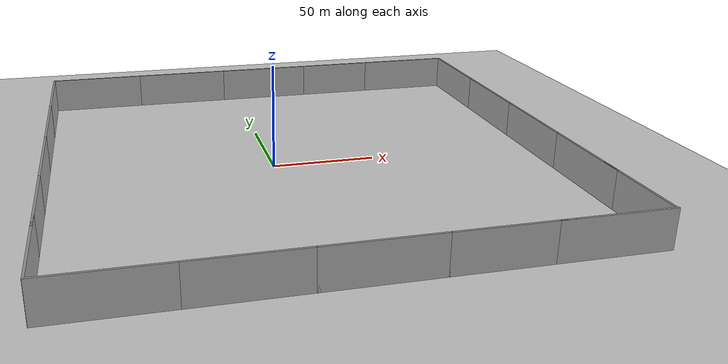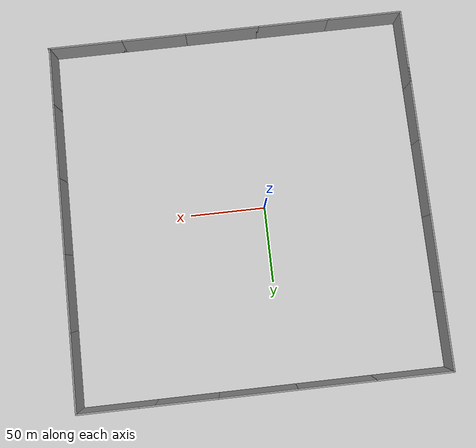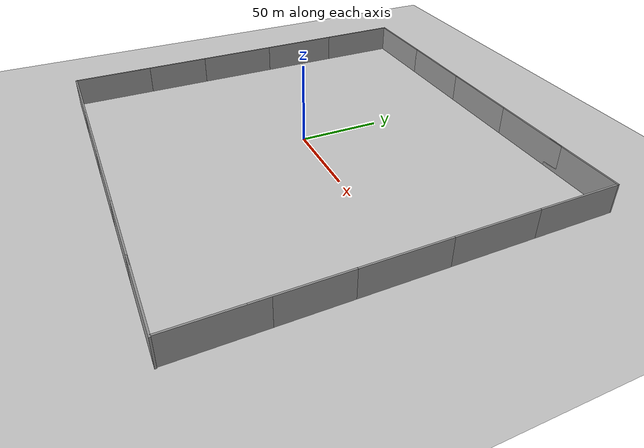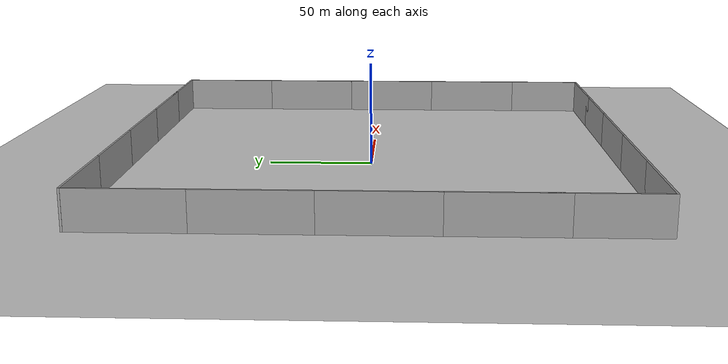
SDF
<sdf version="1.7">
 <world name="default">
  <light name="sun" type="directional">
   <pose>0 0 10 0 -0 0</pose>
   <diffuse>0.8 0.8 0.8 1</diffuse>
   <specular>0.2 0.2 0.2 1</specular>
   <attenuation>
    <range>1000</range>
    <constant>0.9</constant>
    <linear>0.01</linear>
    <quadratic>0.001</quadratic>
   </attenuation>
   <direction>-0.5 0.1 -0.9</direction>
   <spot><inner_angle>0</inner_angle><outer_angle>0</outer_angle><falloff>0</falloff></spot>
  </light>
  <model name="ground_plane">
   <static>1</static>
   <link name="link">
    <collision name="collision">
     <geometry><plane><normal>0 0 1</normal><size>100 100</size></plane></geometry>
     <surface><friction><ode><mu>100</mu><mu2>50</mu2></ode></friction></surface>
    </collision>
    <visual name="visual">
     <cast_shadows>0</cast_shadows>
     <geometry><plane><normal>0 0 1</normal><size>100 100</size></plane></geometry>
     <material>
      <script><uri>file://media/materials/scripts/gazebo.material</uri><name>Gazebo/Grey</name></script>
     </material>
    </visual>
   </link>
  </model>
  <gravity>0 0 -9.8</gravity>
  <magnetic_field>6e-06 2.3e-05 -4.2e-05</magnetic_field>
  <atmosphere type="adiabatic"/>
  <physics type="ode" name="split_unthrottled0" default="true">
   <max_step_size>0.002</max_step_size>
   <real_time_factor>1</real_time_factor>
   <real_time_update_rate>500</real_time_update_rate>
   <ode>
    <solver><thread_position_correction>1</thread_position_correction><island_threads>4</island_threads></solver>
   </ode>
  </physics>
  <physics type="ode" name="split_unthrottled1">
   <real_time_update_rate>0.0</real_time_update_rate>
   <ode>
    <solver><thread_position_correction>1</thread_position_correction><island_threads>4</island_threads></solver>
   </ode>
  </physics>
  <physics type="ode" name="split_unthrottled2">
   <real_time_update_rate>0.0</real_time_update_rate>
   <ode>
    <solver><thread_position_correction>1</thread_position_correction><island_threads>1</island_threads></solver>
   </ode>
  </physics>
  <scene><ambient>0.4 0.4 0.4 1</ambient><background>1 1 1 1</background><shadows>1</shadows></scene>
  <spherical_coordinates>
   <surface_model>EARTH_WGS84</surface_model>
   <latitude_deg>0</latitude_deg>
   <longitude_deg>0</longitude_deg>
   <elevation>0</elevation>
   <heading_deg>0</heading_deg>
  </spherical_coordinates>
  <model name="BigWall">
   <link name="link_0">
    <inertial>
     <mass>1</mass>
     <inertia>
      <ixx>0.166667</ixx>
      <ixy>0</ixy>
      <ixz>0</ixz>
      <iyy>0.166667</iyy>
      <iyz>0</iyz>
      <izz>0.166667</izz>
     </inertia>
    </inertial>
    <visual name="visual">
     <geometry><box><size>50 1 20</size></box></geometry>
     <material>
      <lighting>1</lighting>
      <script><uri>file://media/materials/scripts/gazebo.material</uri><name>Gazebo/Grey</name></script>
      <shader type="pixel"><normal_map>__default__</normal_map></shader>
      <ambient>0.3 0.3 0.3 1</ambient>
      <diffuse>0.7 0.7 0.7 1</diffuse>
      <specular>0.01 0.01 0.01 1</specular>
      <emissive>0 0 0 1</emissive>
     </material>
    </visual>
    <collision name="collision">
     <geometry><box><size>50 1 20</size></box></geometry>
     <surface>
      <friction>
       <ode><mu>1</mu><mu2>1</mu2><fdir1>0 0 0</fdir1><slip1>0</slip1><slip2>0</slip2></ode>
       <torsional>
        <coefficient>1</coefficient>
        <patch_radius>0</patch_radius>
        <surface_radius>0</surface_radius>
        <use_patch_radius>1</use_patch_radius>
        <ode><slip>0</slip></ode>
       </torsional>
      </friction>
      <bounce><restitution_coefficient>0</restitution_coefficient><threshold>1e+06</threshold></bounce>
      <contact>
       <collide_without_contact>0</collide_without_contact>
       <collide_without_contact_bitmask>1</collide_without_contact_bitmask>
       <collide_bitmask>1</collide_bitmask>
       <ode>
        <soft_cfm>0</soft_cfm>
        <soft_erp>0.2</soft_erp>
        <kp>1e+13</kp>
        <kd>1</kd>
        <max_vel>0.01</max_vel>
        <min_depth>0</min_depth>
       </ode>
       <bullet>
        <split_impulse>1</split_impulse>
        <split_impulse_penetration_threshold>-0.01</split_impulse_penetration_threshold>
        <soft_cfm>0</soft_cfm>
        <soft_erp>0.2</soft_erp>
        <kp>1e+13</kp>
        <kd>1</kd>
       </bullet>
      </contact>
     </surface>
    </collision>
   </link>
   <static>1</static>
   <pose>-81.663 -121.428 7.684 0 -0 0</pose>
  </model>
  <model name="BigWall2">
   <link name="link_0">
    <inertial>
     <mass>1</mass>
     <inertia>
      <ixx>0.166667</ixx>
      <ixy>0</ixy>
      <ixz>0</ixz>
      <iyy>0.166667</iyy>
      <iyz>0</iyz>
      <izz>0.166667</izz>
     </inertia>
    </inertial>
    <visual name="visual">
     <geometry><box><size>50 1 20</size></box></geometry>
     <material>
      <lighting>1</lighting>
      <script><uri>file://media/materials/scripts/gazebo.material</uri><name>Gazebo/Grey</name></script>
      <shader type="pixel"><normal_map>__default__</normal_map></shader>
      <ambient>0.3 0.3 0.3 1</ambient>
      <diffuse>0.7 0.7 0.7 1</diffuse>
      <specular>0.01 0.01 0.01 1</specular>
      <emissive>0 0 0 1</emissive>
     </material>
    </visual>
    <collision name="collision">
     <geometry><box><size>50 1 20</size></box></geometry>
     <surface>
      <friction>
       <ode><mu>1</mu><mu2>1</mu2><fdir1>0 0 0</fdir1><slip1>0</slip1><slip2>0</slip2></ode>
       <torsional>
        <coefficient>1</coefficient>
        <patch_radius>0</patch_radius>
        <surface_radius>0</surface_radius>
        <use_patch_radius>1</use_patch_radius>
        <ode><slip>0</slip></ode>
       </torsional>
      </friction>
      <bounce><restitution_coefficient>0</restitution_coefficient><threshold>1e+06</threshold></bounce>
      <contact>
       <collide_without_contact>0</collide_without_contact>
       <collide_without_contact_bitmask>1</collide_without_contact_bitmask>
       <collide_bitmask>1</collide_bitmask>
       <ode>
        <soft_cfm>0</soft_cfm>
        <soft_erp>0.2</soft_erp>
        <kp>1e+13</kp>
        <kd>1</kd>
        <max_vel>0.01</max_vel>
        <min_depth>0</min_depth>
       </ode>
       <bullet>
        <split_impulse>1</split_impulse>
        <split_impulse_penetration_threshold>-0.01</split_impulse_penetration_threshold>
        <soft_cfm>0</soft_cfm>
        <soft_erp>0.2</soft_erp>
        <kp>1e+13</kp>
        <kd>1</kd>
       </bullet>
      </contact>
     </surface>
    </collision>
   </link>
   <static>1</static>
   <pose>-32.963 -121.428 7.684 0 -0 0</pose>
  </model>
  <model name="BigWall3">
   <link name="link_0">
    <inertial>
     <mass>1</mass>
     <inertia>
      <ixx>0.166667</ixx>
      <ixy>0</ixy>
      <ixz>0</ixz>
      <iyy>0.166667</iyy>
      <iyz>0</iyz>
      <izz>0.166667</izz>
     </inertia>
    </inertial>
    <visual name="visual">
     <geometry><box><size>50 1 20</size></box></geometry>
     <material>
      <lighting>1</lighting>
      <script><uri>file://media/materials/scripts/gazebo.material</uri><name>Gazebo/Grey</name></script>
      <shader type="pixel"><normal_map>__default__</normal_map></shader>
      <ambient>0.3 0.3 0.3 1</ambient>
      <diffuse>0.7 0.7 0.7 1</diffuse>
      <specular>0.01 0.01 0.01 1</specular>
      <emissive>0 0 0 1</emissive>
     </material>
    </visual>
    <collision name="collision">
     <geometry><box><size>50 1 20</size></box></geometry>
     <surface>
      <friction>
       <ode><mu>1</mu><mu2>1</mu2><fdir1>0 0 0</fdir1><slip1>0</slip1><slip2>0</slip2></ode>
       <torsional>
        <coefficient>1</coefficient>
        <patch_radius>0</patch_radius>
        <surface_radius>0</surface_radius>
        <use_patch_radius>1</use_patch_radius>
        <ode><slip>0</slip></ode>
       </torsional>
      </friction>
      <bounce><restitution_coefficient>0</restitution_coefficient><threshold>1e+06</threshold></bounce>
      <contact>
       <collide_without_contact>0</collide_without_contact>
       <collide_without_contact_bitmask>1</collide_without_contact_bitmask>
       <collide_bitmask>1</collide_bitmask>
       <ode>
        <soft_cfm>0</soft_cfm>
        <soft_erp>0.2</soft_erp>
        <kp>1e+13</kp>
        <kd>1</kd>
        <max_vel>0.01</max_vel>
        <min_depth>0</min_depth>
       </ode>
       <bullet>
        <split_impulse>1</split_impulse>
        <split_impulse_penetration_threshold>-0.01</split_impulse_penetration_threshold>
        <soft_cfm>0</soft_cfm>
        <soft_erp>0.2</soft_erp>
        <kp>1e+13</kp>
        <kd>1</kd>
       </bullet>
      </contact>
     </surface>
    </collision>
   </link>
   <static>1</static>
   <pose>-106.262665 42.9 7.684 0 -0 -1.5707</pose>
  </model>
  <model name="BigWall4">
   <link name="link_0">
    <inertial>
     <mass>1</mass>
     <inertia>
      <ixx>0.166667</ixx>
      <ixy>0</ixy>
      <ixz>0</ixz>
      <iyy>0.166667</iyy>
      <iyz>0</iyz>
      <izz>0.166667</izz>
     </inertia>
    </inertial>
    <visual name="visual">
     <geometry><box><size>50 1 20</size></box></geometry>
     <material>
      <lighting>1</lighting>
      <script><uri>file://media/materials/scripts/gazebo.material</uri><name>Gazebo/Grey</name></script>
      <shader type="pixel"><normal_map>__default__</normal_map></shader>
      <ambient>0.3 0.3 0.3 1</ambient>
      <diffuse>0.7 0.7 0.7 1</diffuse>
      <specular>0.01 0.01 0.01 1</specular>
      <emissive>0 0 0 1</emissive>
     </material>
    </visual>
    <collision name="collision">
     <geometry><box><size>50 1 20</size></box></geometry>
     <surface>
      <friction>
       <ode><mu>1</mu><mu2>1</mu2><fdir1>0 0 0</fdir1><slip1>0</slip1><slip2>0</slip2></ode>
       <torsional>
        <coefficient>1</coefficient>
        <patch_radius>0</patch_radius>
        <surface_radius>0</surface_radius>
        <use_patch_radius>1</use_patch_radius>
        <ode><slip>0</slip></ode>
       </torsional>
      </friction>
      <bounce><restitution_coefficient>0</restitution_coefficient><threshold>1e+06</threshold></bounce>
      <contact>
       <collide_without_contact>0</collide_without_contact>
       <collide_without_contact_bitmask>1</collide_without_contact_bitmask>
       <collide_bitmask>1</collide_bitmask>
       <ode>
        <soft_cfm>0</soft_cfm>
        <soft_erp>0.2</soft_erp>
        <kp>1e+13</kp>
        <kd>1</kd>
        <max_vel>0.01</max_vel>
        <min_depth>0</min_depth>
       </ode>
       <bullet>
        <split_impulse>1</split_impulse>
        <split_impulse_penetration_threshold>-0.01</split_impulse_penetration_threshold>
        <soft_cfm>0</soft_cfm>
        <soft_erp>0.2</soft_erp>
        <kp>1e+13</kp>
        <kd>1</kd>
       </bullet>
      </contact>
     </surface>
    </collision>
   </link>
   <static>1</static>
   <pose>-106.262665 92.9 7.684 0 -0 -1.5707</pose>
  </model>
  <model name="BigWall5_0">
   <link name="link_0">
    <inertial>
     <mass>1</mass>
     <inertia>
      <ixx>0.166667</ixx>
      <ixy>0</ixy>
      <ixz>0</ixz>
      <iyy>0.166667</iyy>
      <iyz>0</iyz>
      <izz>0.166667</izz>
     </inertia>
    </inertial>
    <visual name="visual">
     <geometry><box><size>50 1 20</size></box></geometry>
     <material>
      <lighting>1</lighting>
      <script><uri>file://media/materials/scripts/gazebo.material</uri><name>Gazebo/Grey</name></script>
      <shader type="pixel"><normal_map>__default__</normal_map></shader>
      <ambient>0.3 0.3 0.3 1</ambient>
      <diffuse>0.7 0.7 0.7 1</diffuse>
      <specular>0.01 0.01 0.01 1</specular>
      <emissive>0 0 0 1</emissive>
     </material>
    </visual>
    <collision name="collision">
     <geometry><box><size>50 1 20</size></box></geometry>
     <surface>
      <friction>
       <ode><mu>1</mu><mu2>1</mu2><fdir1>0 0 0</fdir1><slip1>0</slip1><slip2>0</slip2></ode>
       <torsional>
        <coefficient>1</coefficient>
        <patch_radius>0</patch_radius>
        <surface_radius>0</surface_radius>
        <use_patch_radius>1</use_patch_radius>
        <ode><slip>0</slip></ode>
       </torsional>
      </friction>
      <bounce><restitution_coefficient>0</restitution_coefficient><threshold>1e+06</threshold></bounce>
      <contact>
       <collide_without_contact>0</collide_without_contact>
       <collide_without_contact_bitmask>1</collide_without_contact_bitmask>
       <collide_bitmask>1</collide_bitmask>
       <ode>
        <soft_cfm>0</soft_cfm>
        <soft_erp>0.2</soft_erp>
        <kp>1e+13</kp>
        <kd>1</kd>
        <max_vel>0.01</max_vel>
        <min_depth>0</min_depth>
       </ode>
       <bullet>
        <split_impulse>1</split_impulse>
        <split_impulse_penetration_threshold>-0.01</split_impulse_penetration_threshold>
        <soft_cfm>0</soft_cfm>
        <soft_erp>0.2</soft_erp>
        <kp>1e+13</kp>
        <kd>1</kd>
       </bullet>
      </contact>
     </surface>
    </collision>
   </link>
   <static>1</static>
   <pose>-81.8 117.9 7.684 0 -0 0</pose>
  </model>
  <model name="BigWall5">
   <link name="link_0">
    <inertial>
     <mass>1</mass>
     <inertia>
      <ixx>0.166667</ixx>
      <ixy>0</ixy>
      <ixz>0</ixz>
      <iyy>0.166667</iyy>
      <iyz>0</iyz>
      <izz>0.166667</izz>
     </inertia>
    </inertial>
    <visual name="visual">
     <geometry><box><size>50 1 20</size></box></geometry>
     <material>
      <lighting>1</lighting>
      <script><uri>file://media/materials/scripts/gazebo.material</uri><name>Gazebo/Grey</name></script>
      <shader type="pixel"><normal_map>__default__</normal_map></shader>
      <ambient>0.3 0.3 0.3 1</ambient>
      <diffuse>0.7 0.7 0.7 1</diffuse>
      <specular>0.01 0.01 0.01 1</specular>
      <emissive>0 0 0 1</emissive>
     </material>
    </visual>
    <collision name="collision">
     <geometry><box><size>50 1 20</size></box></geometry>
     <surface>
      <friction>
       <ode><mu>1</mu><mu2>1</mu2><fdir1>0 0 0</fdir1><slip1>0</slip1><slip2>0</slip2></ode>
       <torsional>
        <coefficient>1</coefficient>
        <patch_radius>0</patch_radius>
        <surface_radius>0</surface_radius>
        <use_patch_radius>1</use_patch_radius>
        <ode><slip>0</slip></ode>
       </torsional>
      </friction>
      <bounce><restitution_coefficient>0</restitution_coefficient><threshold>1e+06</threshold></bounce>
      <contact>
       <collide_without_contact>0</collide_without_contact>
       <collide_without_contact_bitmask>1</collide_without_contact_bitmask>
       <collide_bitmask>1</collide_bitmask>
       <ode>
        <soft_cfm>0</soft_cfm>
        <soft_erp>0.2</soft_erp>
        <kp>1e+13</kp>
        <kd>1</kd>
        <max_vel>0.01</max_vel>
        <min_depth>0</min_depth>
       </ode>
       <bullet>
        <split_impulse>1</split_impulse>
        <split_impulse_penetration_threshold>-0.01</split_impulse_penetration_threshold>
        <soft_cfm>0</soft_cfm>
        <soft_erp>0.2</soft_erp>
        <kp>1e+13</kp>
        <kd>1</kd>
       </bullet>
      </contact>
     </surface>
    </collision>
   </link>
   <static>1</static>
   <pose>-32.262665 117.9 7.684 0 -0 0</pose>
  </model>
  <model name="BigWall5_1">
   <link name="link_0">
    <inertial>
     <mass>1</mass>
     <inertia>
      <ixx>0.166667</ixx>
      <ixy>0</ixy>
      <ixz>0</ixz>
      <iyy>0.166667</iyy>
      <iyz>0</iyz>
      <izz>0.166667</izz>
     </inertia>
    </inertial>
    <visual name="visual">
     <geometry><box><size>50 1 20</size></box></geometry>
     <material>
      <lighting>1</lighting>
      <script><uri>file://media/materials/scripts/gazebo.material</uri><name>Gazebo/Grey</name></script>
      <shader type="pixel"><normal_map>__default__</normal_map></shader>
      <ambient>0.3 0.3 0.3 1</ambient>
      <diffuse>0.7 0.7 0.7 1</diffuse>
      <specular>0.01 0.01 0.01 1</specular>
      <emissive>0 0 0 1</emissive>
     </material>
    </visual>
    <collision name="collision">
     <geometry><box><size>50 1 20</size></box></geometry>
     <surface>
      <friction>
       <ode><mu>1</mu><mu2>1</mu2><fdir1>0 0 0</fdir1><slip1>0</slip1><slip2>0</slip2></ode>
       <torsional>
        <coefficient>1</coefficient>
        <patch_radius>0</patch_radius>
        <surface_radius>0</surface_radius>
        <use_patch_radius>1</use_patch_radius>
        <ode><slip>0</slip></ode>
       </torsional>
      </friction>
      <bounce><restitution_coefficient>0</restitution_coefficient><threshold>1e+06</threshold></bounce>
      <contact>
       <collide_without_contact>0</collide_without_contact>
       <collide_without_contact_bitmask>1</collide_without_contact_bitmask>
       <collide_bitmask>1</collide_bitmask>
       <ode>
        <soft_cfm>0</soft_cfm>
        <soft_erp>0.2</soft_erp>
        <kp>1e+13</kp>
        <kd>1</kd>
        <max_vel>0.01</max_vel>
        <min_depth>0</min_depth>
       </ode>
       <bullet>
        <split_impulse>1</split_impulse>
        <split_impulse_penetration_threshold>-0.01</split_impulse_penetration_threshold>
        <soft_cfm>0</soft_cfm>
        <soft_erp>0.2</soft_erp>
        <kp>1e+13</kp>
        <kd>1</kd>
       </bullet>
      </contact>
     </surface>
    </collision>
   </link>
   <static>1</static>
   <pose>17.737335 117.9 7.684 0 -0 0</pose>
  </model>
  <model name="BigWall6">
   <link name="link_0">
    <inertial>
     <mass>1</mass>
     <inertia>
      <ixx>0.166667</ixx>
      <ixy>0</ixy>
      <ixz>0</ixz>
      <iyy>0.166667</iyy>
      <iyz>0</iyz>
      <izz>0.166667</izz>
     </inertia>
    </inertial>
    <visual name="visual">
     <geometry><box><size>50 1 20</size></box></geometry>
     <material>
      <lighting>1</lighting>
      <script><uri>file://media/materials/scripts/gazebo.material</uri><name>Gazebo/Grey</name></script>
      <shader type="pixel"><normal_map>__default__</normal_map></shader>
      <ambient>0.3 0.3 0.3 1</ambient>
      <diffuse>0.7 0.7 0.7 1</diffuse>
      <specular>0.01 0.01 0.01 1</specular>
      <emissive>0 0 0 1</emissive>
     </material>
    </visual>
    <collision name="collision">
     <geometry><box><size>50 1 20</size></box></geometry>
     <surface>
      <friction>
       <ode><mu>1</mu><mu2>1</mu2><fdir1>0 0 0</fdir1><slip1>0</slip1><slip2>0</slip2></ode>
       <torsional>
        <coefficient>1</coefficient>
        <patch_radius>0</patch_radius>
        <surface_radius>0</surface_radius>
        <use_patch_radius>1</use_patch_radius>
        <ode><slip>0</slip></ode>
       </torsional>
      </friction>
      <bounce><restitution_coefficient>0</restitution_coefficient><threshold>1e+06</threshold></bounce>
      <contact>
       <collide_without_contact>0</collide_without_contact>
       <collide_without_contact_bitmask>1</collide_without_contact_bitmask>
       <collide_bitmask>1</collide_bitmask>
       <ode>
        <soft_cfm>0</soft_cfm>
        <soft_erp>0.2</soft_erp>
        <kp>1e+13</kp>
        <kd>1</kd>
        <max_vel>0.01</max_vel>
        <min_depth>0</min_depth>
       </ode>
       <bullet>
        <split_impulse>1</split_impulse>
        <split_impulse_penetration_threshold>-0.01</split_impulse_penetration_threshold>
        <soft_cfm>0</soft_cfm>
        <soft_erp>0.2</soft_erp>
        <kp>1e+13</kp>
        <kd>1</kd>
       </bullet>
      </contact>
     </surface>
    </collision>
   </link>
   <static>1</static>
   <pose>67.737335 117.9 7.684 0 -0 0</pose>
  </model>
  <model name="BigWall6_1">
   <link name="link_0">
    <inertial>
     <mass>1</mass>
     <inertia>
      <ixx>0.166667</ixx>
      <ixy>0</ixy>
      <ixz>0</ixz>
      <iyy>0.166667</iyy>
      <iyz>0</iyz>
      <izz>0.166667</izz>
     </inertia>
    </inertial>
    <visual name="visual">
     <geometry><box><size>50 1 20</size></box></geometry>
     <material>
      <lighting>1</lighting>
      <script><uri>file://media/materials/scripts/gazebo.material</uri><name>Gazebo/Grey</name></script>
      <shader type="pixel"><normal_map>__default__</normal_map></shader>
      <ambient>0.3 0.3 0.3 1</ambient>
      <diffuse>0.7 0.7 0.7 1</diffuse>
      <specular>0.01 0.01 0.01 1</specular>
      <emissive>0 0 0 1</emissive>
     </material>
    </visual>
    <collision name="collision">
     <geometry><box><size>50 1 20</size></box></geometry>
     <surface>
      <friction>
       <ode><mu>1</mu><mu2>1</mu2><fdir1>0 0 0</fdir1><slip1>0</slip1><slip2>0</slip2></ode>
       <torsional>
        <coefficient>1</coefficient>
        <patch_radius>0</patch_radius>
        <surface_radius>0</surface_radius>
        <use_patch_radius>1</use_patch_radius>
        <ode><slip>0</slip></ode>
       </torsional>
      </friction>
      <bounce><restitution_coefficient>0</restitution_coefficient><threshold>1e+06</threshold></bounce>
      <contact>
       <collide_without_contact>0</collide_without_contact>
       <collide_without_contact_bitmask>1</collide_without_contact_bitmask>
       <collide_bitmask>1</collide_bitmask>
       <ode>
        <soft_cfm>0</soft_cfm>
        <soft_erp>0.2</soft_erp>
        <kp>1e+13</kp>
        <kd>1</kd>
        <max_vel>0.01</max_vel>
        <min_depth>0</min_depth>
       </ode>
       <bullet>
        <split_impulse>1</split_impulse>
        <split_impulse_penetration_threshold>-0.01</split_impulse_penetration_threshold>
        <soft_cfm>0</soft_cfm>
        <soft_erp>0.2</soft_erp>
        <kp>1e+13</kp>
        <kd>1</kd>
       </bullet>
      </contact>
     </surface>
    </collision>
   </link>
   <static>1</static>
   <pose>107.737335 117.9 7.684 0 -0 0</pose>
  </model>
  <model name="BigWall7">
   <link name="link_0">
    <inertial>
     <mass>1</mass>
     <inertia>
      <ixx>0.166667</ixx>
      <ixy>0</ixy>
      <ixz>0</ixz>
      <iyy>0.166667</iyy>
      <iyz>0</iyz>
      <izz>0.166667</izz>
     </inertia>
    </inertial>
    <visual name="visual">
     <geometry><box><size>50 1 20</size></box></geometry>
     <material>
      <lighting>1</lighting>
      <script><uri>file://media/materials/scripts/gazebo.material</uri><name>Gazebo/Grey</name></script>
      <shader type="pixel"><normal_map>__default__</normal_map></shader>
      <ambient>0.3 0.3 0.3 1</ambient>
      <diffuse>0.7 0.7 0.7 1</diffuse>
      <specular>0.01 0.01 0.01 1</specular>
      <emissive>0 0 0 1</emissive>
     </material>
    </visual>
    <collision name="collision">
     <geometry><box><size>50 1 20</size></box></geometry>
     <surface>
      <friction>
       <ode><mu>1</mu><mu2>1</mu2><fdir1>0 0 0</fdir1><slip1>0</slip1><slip2>0</slip2></ode>
       <torsional>
        <coefficient>1</coefficient>
        <patch_radius>0</patch_radius>
        <surface_radius>0</surface_radius>
        <use_patch_radius>1</use_patch_radius>
        <ode><slip>0</slip></ode>
       </torsional>
      </friction>
      <bounce><restitution_coefficient>0</restitution_coefficient><threshold>1e+06</threshold></bounce>
      <contact>
       <collide_without_contact>0</collide_without_contact>
       <collide_without_contact_bitmask>1</collide_without_contact_bitmask>
       <collide_bitmask>1</collide_bitmask>
       <ode>
        <soft_cfm>0</soft_cfm>
        <soft_erp>0.2</soft_erp>
        <kp>1e+13</kp>
        <kd>1</kd>
        <max_vel>0.01</max_vel>
        <min_depth>0</min_depth>
       </ode>
       <bullet>
        <split_impulse>1</split_impulse>
        <split_impulse_penetration_threshold>-0.01</split_impulse_penetration_threshold>
        <soft_cfm>0</soft_cfm>
        <soft_erp>0.2</soft_erp>
        <kp>1e+13</kp>
        <kd>1</kd>
       </bullet>
      </contact>
     </surface>
    </collision>
   </link>
   <static>1</static>
   <pose>132.262665 92.508408 7.684000 0 -0 -1.570944</pose>
  </model>
  <model name="BigWall7_1">
   <link name="link_0">
    <inertial>
     <mass>1</mass>
     <inertia>
      <ixx>0.166667</ixx>
      <ixy>0</ixy>
      <ixz>0</ixz>
      <iyy>0.166667</iyy>
      <iyz>0</iyz>
      <izz>0.166667</izz>
     </inertia>
    </inertial>
    <visual name="visual">
     <geometry><box><size>50 1 20</size></box></geometry>
     <material>
      <lighting>1</lighting>
      <script><uri>file://media/materials/scripts/gazebo.material</uri><name>Gazebo/Grey</name></script>
      <shader type="pixel"><normal_map>__default__</normal_map></shader>
      <ambient>0.3 0.3 0.3 1</ambient>
      <diffuse>0.7 0.7 0.7 1</diffuse>
      <specular>0.01 0.01 0.01 1</specular>
      <emissive>0 0 0 1</emissive>
     </material>
    </visual>
    <collision name="collision">
     <geometry><box><size>50 1 20</size></box></geometry>
     <surface>
      <friction>
       <ode><mu>1</mu><mu2>1</mu2><fdir1>0 0 0</fdir1><slip1>0</slip1><slip2>0</slip2></ode>
       <torsional>
        <coefficient>1</coefficient>
        <patch_radius>0</patch_radius>
        <surface_radius>0</surface_radius>
        <use_patch_radius>1</use_patch_radius>
        <ode><slip>0</slip></ode>
       </torsional>
      </friction>
      <bounce><restitution_coefficient>0</restitution_coefficient><threshold>1e+06</threshold></bounce>
      <contact>
       <collide_without_contact>0</collide_without_contact>
       <collide_without_contact_bitmask>1</collide_without_contact_bitmask>
       <collide_bitmask>1</collide_bitmask>
       <ode>
        <soft_cfm>0</soft_cfm>
        <soft_erp>0.2</soft_erp>
        <kp>1e+13</kp>
        <kd>1</kd>
        <max_vel>0.01</max_vel>
        <min_depth>0</min_depth>
       </ode>
       <bullet>
        <split_impulse>1</split_impulse>
        <split_impulse_penetration_threshold>-0.01</split_impulse_penetration_threshold>
        <soft_cfm>0</soft_cfm>
        <soft_erp>0.2</soft_erp>
        <kp>1e+13</kp>
        <kd>1</kd>
       </bullet>
      </contact>
     </surface>
    </collision>
   </link>
   <static>1</static>
   <pose>132.262665 42.508408 7.684000 0 -0 -1.570944</pose>
  </model>
  <model name="BigWall7_2">
   <link name="link_0">
    <inertial>
     <mass>1</mass>
     <inertia>
      <ixx>0.166667</ixx>
      <ixy>0</ixy>
      <ixz>0</ixz>
      <iyy>0.166667</iyy>
      <iyz>0</iyz>
      <izz>0.166667</izz>
     </inertia>
    </inertial>
    <visual name="visual">
     <geometry><box><size>50 1 20</size></box></geometry>
     <material>
      <lighting>1</lighting>
      <script><uri>file://media/materials/scripts/gazebo.material</uri><name>Gazebo/Grey</name></script>
      <shader type="pixel"><normal_map>__default__</normal_map></shader>
      <ambient>0.3 0.3 0.3 1</ambient>
      <diffuse>0.7 0.7 0.7 1</diffuse>
      <specular>0.01 0.01 0.01 1</specular>
      <emissive>0 0 0 1</emissive>
     </material>
    </visual>
    <collision name="collision">
     <geometry><box><size>50 1 20</size></box></geometry>
     <surface>
      <friction>
       <ode><mu>1</mu><mu2>1</mu2><fdir1>0 0 0</fdir1><slip1>0</slip1><slip2>0</slip2></ode>
       <torsional>
        <coefficient>1</coefficient>
        <patch_radius>0</patch_radius>
        <surface_radius>0</surface_radius>
        <use_patch_radius>1</use_patch_radius>
        <ode><slip>0</slip></ode>
       </torsional>
      </friction>
      <bounce><restitution_coefficient>0</restitution_coefficient><threshold>1e+06</threshold></bounce>
      <contact>
       <collide_without_contact>0</collide_without_contact>
       <collide_without_contact_bitmask>1</collide_without_contact_bitmask>
       <collide_bitmask>1</collide_bitmask>
       <ode>
        <soft_cfm>0</soft_cfm>
        <soft_erp>0.2</soft_erp>
        <kp>1e+13</kp>
        <kd>1</kd>
        <max_vel>0.01</max_vel>
        <min_depth>0</min_depth>
       </ode>
       <bullet>
        <split_impulse>1</split_impulse>
        <split_impulse_penetration_threshold>-0.01</split_impulse_penetration_threshold>
        <soft_cfm>0</soft_cfm>
        <soft_erp>0.2</soft_erp>
        <kp>1e+13</kp>
        <kd>1</kd>
       </bullet>
      </contact>
     </surface>
    </collision>
   </link>
   <static>1</static>
   <pose>132.262665 -7.491592 7.684000 0 -0 -1.570944</pose>
  </model>
  <model name="BigWall7_3">
   <link name="link_0">
    <inertial>
     <mass>1</mass>
     <inertia>
      <ixx>0.166667</ixx>
      <ixy>0</ixy>
      <ixz>0</ixz>
      <iyy>0.166667</iyy>
      <iyz>0</iyz>
      <izz>0.166667</izz>
     </inertia>
    </inertial>
    <visual name="visual">
     <geometry><box><size>50 1 20</size></box></geometry>
     <material>
      <lighting>1</lighting>
      <script><uri>file://media/materials/scripts/gazebo.material</uri><name>Gazebo/Grey</name></script>
      <shader type="pixel"><normal_map>__default__</normal_map></shader>
      <ambient>0.3 0.3 0.3 1</ambient>
      <diffuse>0.7 0.7 0.7 1</diffuse>
      <specular>0.01 0.01 0.01 1</specular>
      <emissive>0 0 0 1</emissive>
     </material>
    </visual>
    <collision name="collision">
     <geometry><box><size>50 1 20</size></box></geometry>
     <surface>
      <friction>
       <ode><mu>1</mu><mu2>1</mu2><fdir1>0 0 0</fdir1><slip1>0</slip1><slip2>0</slip2></ode>
       <torsional>
        <coefficient>1</coefficient>
        <patch_radius>0</patch_radius>
        <surface_radius>0</surface_radius>
        <use_patch_radius>1</use_patch_radius>
        <ode><slip>0</slip></ode>
       </torsional>
      </friction>
      <bounce><restitution_coefficient>0</restitution_coefficient><threshold>1e+06</threshold></bounce>
      <contact>
       <collide_without_contact>0</collide_without_contact>
       <collide_without_contact_bitmask>1</collide_without_contact_bitmask>
       <collide_bitmask>1</collide_bitmask>
       <ode>
        <soft_cfm>0</soft_cfm>
        <soft_erp>0.2</soft_erp>
        <kp>1e+13</kp>
        <kd>1</kd>
        <max_vel>0.01</max_vel>
        <min_depth>0</min_depth>
       </ode>
       <bullet>
        <split_impulse>1</split_impulse>
        <split_impulse_penetration_threshold>-0.01</split_impulse_penetration_threshold>
        <soft_cfm>0</soft_cfm>
        <soft_erp>0.2</soft_erp>
        <kp>1e+13</kp>
        <kd>1</kd>
       </bullet>
      </contact>
     </surface>
    </collision>
   </link>
   <static>1</static>
   <pose>132.262665 -57.491592 7.684000 0 -0 -1.570944</pose>
  </model>
  <model name="BigWall8">
   <link name="link_0">
    <inertial>
     <mass>1</mass>
     <inertia>
      <ixx>0.166667</ixx>
      <ixy>0</ixy>
      <ixz>0</ixz>
      <iyy>0.166667</iyy>
      <iyz>0</iyz>
      <izz>0.166667</izz>
     </inertia>
    </inertial>
    <visual name="visual">
     <geometry><box><size>50 1 20</size></box></geometry>
     <material>
      <lighting>1</lighting>
      <script><uri>file://media/materials/scripts/gazebo.material</uri><name>Gazebo/Grey</name></script>
      <shader type="pixel"><normal_map>__default__</normal_map></shader>
      <ambient>0.3 0.3 0.3 1</ambient>
      <diffuse>0.7 0.7 0.7 1</diffuse>
      <specular>0.01 0.01 0.01 1</specular>
      <emissive>0 0 0 1</emissive>
     </material>
    </visual>
    <collision name="collision">
     <geometry><box><size>50 1 20</size></box></geometry>
     <surface>
      <friction>
       <ode><mu>1</mu><mu2>1</mu2><fdir1>0 0 0</fdir1><slip1>0</slip1><slip2>0</slip2></ode>
       <torsional>
        <coefficient>1</coefficient>
        <patch_radius>0</patch_radius>
        <surface_radius>0</surface_radius>
        <use_patch_radius>1</use_patch_radius>
        <ode><slip>0</slip></ode>
       </torsional>
      </friction>
      <bounce><restitution_coefficient>0</restitution_coefficient><threshold>1e+06</threshold></bounce>
      <contact>
       <collide_without_contact>0</collide_without_contact>
       <collide_without_contact_bitmask>1</collide_without_contact_bitmask>
       <collide_bitmask>1</collide_bitmask>
       <ode>
        <soft_cfm>0</soft_cfm>
        <soft_erp>0.2</soft_erp>
        <kp>1e+13</kp>
        <kd>1</kd>
        <max_vel>0.01</max_vel>
        <min_depth>0</min_depth>
       </ode>
       <bullet>
        <split_impulse>1</split_impulse>
        <split_impulse_penetration_threshold>-0.01</split_impulse_penetration_threshold>
        <soft_cfm>0</soft_cfm>
        <soft_erp>0.2</soft_erp>
        <kp>1e+13</kp>
        <kd>1</kd>
       </bullet>
      </contact>
     </surface>
    </collision>
   </link>
   <static>1</static>
   <pose>15.62665 -121.428 7.684000 0 -0 -0</pose>
  </model>
  <model name="BigWall9">
   <link name="link_0">
    <inertial>
     <mass>1</mass>
     <inertia>
      <ixx>0.166667</ixx>
      <ixy>0</ixy>
      <ixz>0</ixz>
      <iyy>0.166667</iyy>
      <iyz>0</iyz>
      <izz>0.166667</izz>
     </inertia>
    </inertial>
    <visual name="visual">
     <geometry><box><size>50 1 20</size></box></geometry>
     <material>
      <lighting>1</lighting>
      <script><uri>file://media/materials/scripts/gazebo.material</uri><name>Gazebo/Grey</name></script>
      <shader type="pixel"><normal_map>__default__</normal_map></shader>
      <ambient>0.3 0.3 0.3 1</ambient>
      <diffuse>0.7 0.7 0.7 1</diffuse>
      <specular>0.01 0.01 0.01 1</specular>
      <emissive>0 0 0 1</emissive>
     </material>
    </visual>
    <collision name="collision">
     <geometry><box><size>50 1 20</size></box></geometry>
     <surface>
      <friction>
       <ode><mu>1</mu><mu2>1</mu2><fdir1>0 0 0</fdir1><slip1>0</slip1><slip2>0</slip2></ode>
       <torsional>
        <coefficient>1</coefficient>
        <patch_radius>0</patch_radius>
        <surface_radius>0</surface_radius>
        <use_patch_radius>1</use_patch_radius>
        <ode><slip>0</slip></ode>
       </torsional>
      </friction>
      <bounce><restitution_coefficient>0</restitution_coefficient><threshold>1e+06</threshold></bounce>
      <contact>
       <collide_without_contact>0</collide_without_contact>
       <collide_without_contact_bitmask>1</collide_without_contact_bitmask>
       <collide_bitmask>1</collide_bitmask>
       <ode>
        <soft_cfm>0</soft_cfm>
        <soft_erp>0.2</soft_erp>
        <kp>1e+13</kp>
        <kd>1</kd>
        <max_vel>0.01</max_vel>
        <min_depth>0</min_depth>
       </ode>
       <bullet>
        <split_impulse>1</split_impulse>
        <split_impulse_penetration_threshold>-0.01</split_impulse_penetration_threshold>
        <soft_cfm>0</soft_cfm>
        <soft_erp>0.2</soft_erp>
        <kp>1e+13</kp>
        <kd>1</kd>
       </bullet>
      </contact>
     </surface>
    </collision>
   </link>
   <static>1</static>
   <pose>65.262665 -121.428 7.684000 0 -0 -0</pose>
  </model>
  <model name="BigWall10">
   <link name="link_0">
    <inertial>
     <mass>1</mass>
     <inertia>
      <ixx>0.166667</ixx>
      <ixy>0</ixy>
      <ixz>0</ixz>
      <iyy>0.166667</iyy>
      <iyz>0</iyz>
      <izz>0.166667</izz>
     </inertia>
    </inertial>
    <visual name="visual">
     <geometry><box><size>50 1 20</size></box></geometry>
     <material>
      <lighting>1</lighting>
      <script><uri>file://media/materials/scripts/gazebo.material</uri><name>Gazebo/Grey</name></script>
      <shader type="pixel"><normal_map>__default__</normal_map></shader>
      <ambient>0.3 0.3 0.3 1</ambient>
      <diffuse>0.7 0.7 0.7 1</diffuse>
      <specular>0.01 0.01 0.01 1</specular>
      <emissive>0 0 0 1</emissive>
     </material>
    </visual>
    <collision name="collision">
     <geometry><box><size>50 1 20</size></box></geometry>
     <surface>
      <friction>
       <ode><mu>1</mu><mu2>1</mu2><fdir1>0 0 0</fdir1><slip1>0</slip1><slip2>0</slip2></ode>
       <torsional>
        <coefficient>1</coefficient>
        <patch_radius>0</patch_radius>
        <surface_radius>0</surface_radius>
        <use_patch_radius>1</use_patch_radius>
        <ode><slip>0</slip></ode>
       </torsional>
      </friction>
      <bounce><restitution_coefficient>0</restitution_coefficient><threshold>1e+06</threshold></bounce>
      <contact>
       <collide_without_contact>0</collide_without_contact>
       <collide_without_contact_bitmask>1</collide_without_contact_bitmask>
       <collide_bitmask>1</collide_bitmask>
       <ode>
        <soft_cfm>0</soft_cfm>
        <soft_erp>0.2</soft_erp>
        <kp>1e+13</kp>
        <kd>1</kd>
        <max_vel>0.01</max_vel>
        <min_depth>0</min_depth>
       </ode>
       <bullet>
        <split_impulse>1</split_impulse>
        <split_impulse_penetration_threshold>-0.01</split_impulse_penetration_threshold>
        <soft_cfm>0</soft_cfm>
        <soft_erp>0.2</soft_erp>
        <kp>1e+13</kp>
        <kd>1</kd>
       </bullet>
      </contact>
     </surface>
    </collision>
   </link>
   <static>1</static>
   <pose>108.262665 -121.428 7.684000 0 -0 -0</pose>
  </model>
  <model name="BigWall11">
   <link name="link_0">
    <inertial>
     <mass>1</mass>
     <inertia>
      <ixx>0.166667</ixx>
      <ixy>0</ixy>
      <ixz>0</ixz>
      <iyy>0.166667</iyy>
      <iyz>0</iyz>
      <izz>0.166667</izz>
     </inertia>
    </inertial>
    <visual name="visual">
     <geometry><box><size>50 1 20</size></box></geometry>
     <material>
      <lighting>1</lighting>
      <script><uri>file://media/materials/scripts/gazebo.material</uri><name>Gazebo/Grey</name></script>
      <shader type="pixel"><normal_map>__default__</normal_map></shader>
      <ambient>0.3 0.3 0.3 1</ambient>
      <diffuse>0.7 0.7 0.7 1</diffuse>
      <specular>0.01 0.01 0.01 1</specular>
      <emissive>0 0 0 1</emissive>
     </material>
    </visual>
    <collision name="collision">
     <geometry><box><size>50 1 20</size></box></geometry>
     <surface>
      <friction>
       <ode><mu>1</mu><mu2>1</mu2><fdir1>0 0 0</fdir1><slip1>0</slip1><slip2>0</slip2></ode>
       <torsional>
        <coefficient>1</coefficient>
        <patch_radius>0</patch_radius>
        <surface_radius>0</surface_radius>
        <use_patch_radius>1</use_patch_radius>
        <ode><slip>0</slip></ode>
       </torsional>
      </friction>
      <bounce><restitution_coefficient>0</restitution_coefficient><threshold>1e+06</threshold></bounce>
      <contact>
       <collide_without_contact>0</collide_without_contact>
       <collide_without_contact_bitmask>1</collide_without_contact_bitmask>
       <collide_bitmask>1</collide_bitmask>
       <ode>
        <soft_cfm>0</soft_cfm>
        <soft_erp>0.2</soft_erp>
        <kp>1e+13</kp>
        <kd>1</kd>
        <max_vel>0.01</max_vel>
        <min_depth>0</min_depth>
       </ode>
       <bullet>
        <split_impulse>1</split_impulse>
        <split_impulse_penetration_threshold>-0.01</split_impulse_penetration_threshold>
        <soft_cfm>0</soft_cfm>
        <soft_erp>0.2</soft_erp>
        <kp>1e+13</kp>
        <kd>1</kd>
       </bullet>
      </contact>
     </surface>
    </collision>
   </link>
   <static>1</static>
   <pose>132.262665 -96.808408 7.684000 0 -0 -1.570944</pose>
  </model>
  <model name="BigWall12">
   <link name="link_0">
    <inertial>
     <mass>1</mass>
     <inertia>
      <ixx>0.166667</ixx>
      <ixy>0</ixy>
      <ixz>0</ixz>
      <iyy>0.166667</iyy>
      <iyz>0</iyz>
      <izz>0.166667</izz>
     </inertia>
    </inertial>
    <visual name="visual">
     <geometry><box><size>50 1 20</size></box></geometry>
     <material>
      <lighting>1</lighting>
      <script><uri>file://media/materials/scripts/gazebo.material</uri><name>Gazebo/Grey</name></script>
      <shader type="pixel"><normal_map>__default__</normal_map></shader>
      <ambient>0.3 0.3 0.3 1</ambient>
      <diffuse>0.7 0.7 0.7 1</diffuse>
      <specular>0.01 0.01 0.01 1</specular>
      <emissive>0 0 0 1</emissive>
     </material>
    </visual>
    <collision name="collision">
     <geometry><box><size>50 1 20</size></box></geometry>
     <surface>
      <friction>
       <ode><mu>1</mu><mu2>1</mu2><fdir1>0 0 0</fdir1><slip1>0</slip1><slip2>0</slip2></ode>
       <torsional>
        <coefficient>1</coefficient>
        <patch_radius>0</patch_radius>
        <surface_radius>0</surface_radius>
        <use_patch_radius>1</use_patch_radius>
        <ode><slip>0</slip></ode>
       </torsional>
      </friction>
      <bounce><restitution_coefficient>0</restitution_coefficient><threshold>1e+06</threshold></bounce>
      <contact>
       <collide_without_contact>0</collide_without_contact>
       <collide_without_contact_bitmask>1</collide_without_contact_bitmask>
       <collide_bitmask>1</collide_bitmask>
       <ode>
        <soft_cfm>0</soft_cfm>
        <soft_erp>0.2</soft_erp>
        <kp>1e+13</kp>
        <kd>1</kd>
        <max_vel>0.01</max_vel>
        <min_depth>0</min_depth>
       </ode>
       <bullet>
        <split_impulse>1</split_impulse>
        <split_impulse_penetration_threshold>-0.01</split_impulse_penetration_threshold>
        <soft_cfm>0</soft_cfm>
        <soft_erp>0.2</soft_erp>
        <kp>1e+13</kp>
        <kd>1</kd>
       </bullet>
      </contact>
     </surface>
    </collision>
   </link>
   <static>1</static>
   <pose>-106.262665 -96.9 7.684000 0 -0 -1.570944</pose>
  </model>
  <model name="BigWall13">
   <link name="link_0">
    <inertial>
     <mass>1</mass>
     <inertia>
      <ixx>0.166667</ixx>
      <ixy>0</ixy>
      <ixz>0</ixz>
      <iyy>0.166667</iyy>
      <iyz>0</iyz>
      <izz>0.166667</izz>
     </inertia>
    </inertial>
    <visual name="visual">
     <geometry><box><size>50 1 20</size></box></geometry>
     <material>
      <lighting>1</lighting>
      <script><uri>file://media/materials/scripts/gazebo.material</uri><name>Gazebo/Grey</name></script>
      <shader type="pixel"><normal_map>__default__</normal_map></shader>
      <ambient>0.3 0.3 0.3 1</ambient>
      <diffuse>0.7 0.7 0.7 1</diffuse>
      <specular>0.01 0.01 0.01 1</specular>
      <emissive>0 0 0 1</emissive>
     </material>
    </visual>
    <collision name="collision">
     <geometry><box><size>50 1 20</size></box></geometry>
     <surface>
      <friction>
       <ode><mu>1</mu><mu2>1</mu2><fdir1>0 0 0</fdir1><slip1>0</slip1><slip2>0</slip2></ode>
       <torsional>
        <coefficient>1</coefficient>
        <patch_radius>0</patch_radius>
        <surface_radius>0</surface_radius>
        <use_patch_radius>1</use_patch_radius>
        <ode><slip>0</slip></ode>
       </torsional>
      </friction>
      <bounce><restitution_coefficient>0</restitution_coefficient><threshold>1e+06</threshold></bounce>
      <contact>
       <collide_without_contact>0</collide_without_contact>
       <collide_without_contact_bitmask>1</collide_without_contact_bitmask>
       <collide_bitmask>1</collide_bitmask>
       <ode>
        <soft_cfm>0</soft_cfm>
        <soft_erp>0.2</soft_erp>
        <kp>1e+13</kp>
        <kd>1</kd>
        <max_vel>0.01</max_vel>
        <min_depth>0</min_depth>
       </ode>
       <bullet>
        <split_impulse>1</split_impulse>
        <split_impulse_penetration_threshold>-0.01</split_impulse_penetration_threshold>
        <soft_cfm>0</soft_cfm>
        <soft_erp>0.2</soft_erp>
        <kp>1e+13</kp>
        <kd>1</kd>
       </bullet>
      </contact>
     </surface>
    </collision>
   </link>
   <static>1</static>
   <pose>-106.262665 -57.1 7.684000 0 -0 -1.570944</pose>
  </model>
  <model name="BigWall1">
   <link name="link_0">
    <inertial>
     <mass>1</mass>
     <inertia>
      <ixx>0.166667</ixx>
      <ixy>0</ixy>
      <ixz>0</ixz>
      <iyy>0.166667</iyy>
      <iyz>0</iyz>
      <izz>0.166667</izz>
     </inertia>
    </inertial>
    <visual name="visual">
     <geometry><box><size>50 1 20</size></box></geometry>
     <material>
      <lighting>1</lighting>
      <script><uri>file://media/materials/scripts/gazebo.material</uri><name>Gazebo/Grey</name></script>
      <shader type="pixel"><normal_map>__default__</normal_map></shader>
      <ambient>0.3 0.3 0.3 1</ambient>
      <diffuse>0.7 0.7 0.7 1</diffuse>
      <specular>0.01 0.01 0.01 1</specular>
      <emissive>0 0 0 1</emissive>
     </material>
    </visual>
    <collision name="collision">
     <geometry><box><size>50 1 20</size></box></geometry>
     <surface>
      <friction>
       <ode><mu>1</mu><mu2>1</mu2><fdir1>0 0 0</fdir1><slip1>0</slip1><slip2>0</slip2></ode>
       <torsional>
        <coefficient>1</coefficient>
        <patch_radius>0</patch_radius>
        <surface_radius>0</surface_radius>
        <use_patch_radius>1</use_patch_radius>
        <ode><slip>0</slip></ode>
       </torsional>
      </friction>
      <bounce><restitution_coefficient>0</restitution_coefficient><threshold>1e+06</threshold></bounce>
      <contact>
       <collide_without_contact>0</collide_without_contact>
       <collide_without_contact_bitmask>1</collide_without_contact_bitmask>
       <collide_bitmask>1</collide_bitmask>
       <ode>
        <soft_cfm>0</soft_cfm>
        <soft_erp>0.2</soft_erp>
        <kp>1e+13</kp>
        <kd>1</kd>
        <max_vel>0.01</max_vel>
        <min_depth>0</min_depth>
       </ode>
       <bullet>
        <split_impulse>1</split_impulse>
        <split_impulse_penetration_threshold>-0.01</split_impulse_penetration_threshold>
        <soft_cfm>0</soft_cfm>
        <soft_erp>0.2</soft_erp>
        <kp>1e+13</kp>
        <kd>1</kd>
       </bullet>
      </contact>
     </surface>
    </collision>
   </link>
   <static>1</static>
   <pose>-106.262665 -7.1 7.684000 0 -0 -1.570944</pose>
  </model>
 </world>
</sdf>
